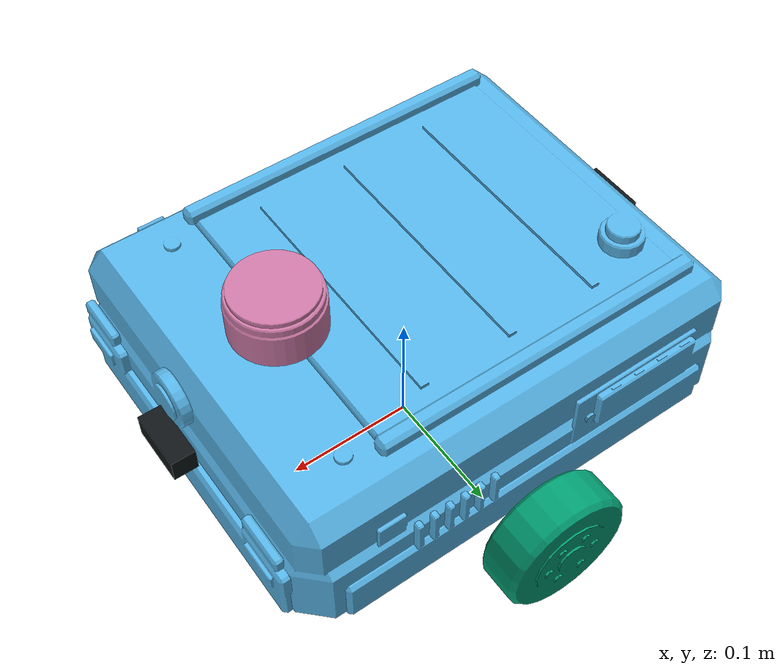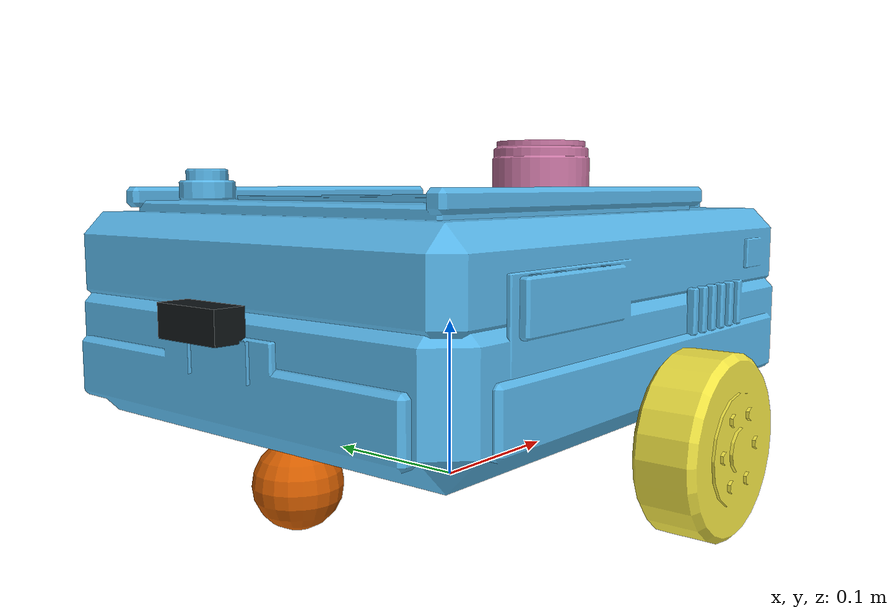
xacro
<?xml version="1.0"?>

<robot xmlns:xacro="http://www.ros.org/wiki/xacro" name="fleet_bot">

  <!-- ===== 1. Input and sizes ===== -->
  <xacro:arg name="ns" default="robot1"/>
  <xacro:property name="ns" value="$(arg ns)"/>

  <xacro:property name="wheel_radius"     value="0.050"/>
  <xacro:property name="wheel_separation" value="0.350"/>
  <xacro:property name="wheel_width"      value="0.035"/>
  <xacro:property name="base_length"      value="0.360"/>
  <xacro:property name="base_width"       value="0.300"/>
  <xacro:property name="base_height"      value="0.120"/>
  <xacro:property name="base_mass"        value="5.0"/>
  <xacro:property name="wheel_mass"       value="0.4"/>
  <xacro:property name="caster_radius"    value="0.025"/>
  <xacro:property name="body_rgba" value="${'0.20 0.47 0.96 1' if ns == 'robot1' else '0.94 0.55 0.16 1'}"/>

  <xacro:arg name="cameras" default="true"/>
  <xacro:arg name="camera_width" default="512"/>
  <xacro:arg name="camera_height" default="288"/>
  <xacro:arg name="camera_rate" default="8.0"/>
  <xacro:property name="robot_visual" value="${'blue' if ns == 'robot1' else 'amber'}"/>

  <!-- ===== 2. Mass helpers (physics needs inertia for every moving part) ===== -->
  <xacro:macro name="box_inertia" params="m x y z">
    <inertial>
      <mass value="${m}"/>
      <inertia ixx="${m*(y*y+z*z)/12}" iyy="${m*(x*x+z*z)/12}" izz="${m*(x*x+y*y)/12}"
               ixy="0" ixz="0" iyz="0"/>
    </inertial>
  </xacro:macro>
  <xacro:macro name="cylinder_inertia" params="m r h">
    <inertial>
      <mass value="${m}"/>
      <inertia ixx="${m*(3*r*r+h*h)/12}" iyy="${m*(3*r*r+h*h)/12}" izz="${m*r*r/2}"
               ixy="0" ixz="0" iyz="0"/>
    </inertial>
  </xacro:macro>

  <!-- ===== 3. Body ===== -->
  <link name="base_footprint"/>

  <link name="base_link">
    <visual>
      <geometry><mesh filename="package://factory_bot/models/robot_premium/meshes/body_${robot_visual}.obj"/></geometry>
    </visual>
    <collision>
      <geometry><box size="${base_length} ${base_width} ${base_height}"/></geometry>
    </collision>
    <xacro:box_inertia m="${base_mass}" x="${base_length}" y="${base_width}" z="${base_height}"/>
  </link>

  <joint name="base_footprint_joint" type="fixed">
    <parent link="base_footprint"/>
    <child link="base_link"/>
    <origin xyz="0 0 ${wheel_radius + base_height/2}"/>
  </joint>

  <!-- ===== 4. Wheels: one block used twice ===== -->
  <xacro:macro name="wheel" params="prefix reflect">
    <link name="${prefix}_wheel_link">
      <visual>
        <geometry><mesh filename="package://factory_bot/models/robot_premium/meshes/wheel.obj"/></geometry>
      </visual>
       <collision>
        <geometry><sphere radius="${wheel_radius}"/></geometry>
      </collision>
      <xacro:cylinder_inertia m="${wheel_mass}" r="${wheel_radius}" h="${wheel_width}"/>
    </link>
    <joint name="${prefix}_wheel_joint" type="continuous">
      <parent link="base_link"/>
      <child link="${prefix}_wheel_link"/>
      <origin xyz="0 ${reflect * wheel_separation/2} ${-base_height/2}"/>
      <axis xyz="0 1 0"/>
      <dynamics damping="0.02" friction="0.001"/>
    </joint>
  </xacro:macro>

  <xacro:wheel prefix="left"  reflect="1"/>
  <xacro:wheel prefix="right" reflect="-1"/>

  <!-- ===== 5. Front caster: a frictionless ball so the robot does not tip ===== -->
  <link name="caster_link">
    <visual><geometry><sphere radius="${caster_radius}"/></geometry></visual>
    <collision>
      <geometry><sphere radius="${caster_radius}"/></geometry>
      <surface><friction><ode><mu>0.0</mu><mu2>0.0</mu2></ode></friction></surface>
    </collision>
    <inertial>
      <mass value="0.1"/>
      <inertia ixx="1e-5" iyy="1e-5" izz="1e-5" ixy="0" ixz="0" iyz="0"/>
    </inertial>
  </link>
  <joint name="caster_joint" type="fixed">
    <parent link="base_link"/>
    <child link="caster_link"/>
    <origin xyz="${base_length/2 - 0.05} 0 ${-base_height/2 - wheel_radius + caster_radius}"/>
  </joint>

  <link name="rear_caster_link">
    <visual><geometry><sphere radius="${caster_radius}"/></geometry></visual>
    <collision><geometry><sphere radius="${caster_radius}"/></geometry></collision>
    <inertial>
      <mass value="0.1"/>
      <inertia ixx="1e-5" iyy="1e-5" izz="1e-5" ixy="0" ixz="0" iyz="0"/>
    </inertial>
  </link>
  <joint name="rear_caster_joint" type="fixed">
    <parent link="base_link"/>
    <child link="rear_caster_link"/>
    <origin xyz="${-(base_length/2 - 0.05)} 0 ${-base_height/2 - wheel_radius + caster_radius}"/>
  </joint>

  <!-- ===== 6. Sensor mounts (the sensors themselves are added in Step 6) ===== -->
  <link name="laser_link">
    <!-- Housing drawn BELOW the sensor point: the lidar must not see its own case. -->
    <visual>
      <geometry><mesh filename="package://factory_bot/models/robot_premium/meshes/lidar.obj"/></geometry>
    </visual>
    <inertial>
      <mass value="0.15"/>
      <inertia ixx="1e-4" iyy="1e-4" izz="1e-4" ixy="0" ixz="0" iyz="0"/>
    </inertial>
  </link>
  <joint name="laser_joint" type="fixed">
    <parent link="base_link"/>
    <child link="laser_link"/>
    <origin xyz="0.10 0 ${base_height/2 + 0.06}"/>
  </joint>

  <!-- Low front safety lidar: ahead of our own shell, at the other robot's body height.
       The original 360-degree SLAM lidar and its reference-map scan plane stay unchanged. -->
  <link name="obstacle_laser_link">
    <visual>
      <origin xyz="-0.015 0 0"/>
      <geometry><box size="0.018 0.045 0.018"/></geometry>
      <material name="safety_lidar_graphite"><color rgba="0.06 0.08 0.09 1"/></material>
    </visual>
  </link>
  <joint name="obstacle_laser_joint" type="fixed">
    <parent link="base_link"/><child link="obstacle_laser_link"/>
    <origin xyz="0.205 0 0.010"/>
  </joint>

  <!-- Low rear safety lidar, outside our shell. It is not an ICP/SLAM input. -->
  <link name="rear_obstacle_laser_link">
    <visual>
      <origin xyz="-0.015 0 0"/>
      <geometry><box size="0.018 0.045 0.018"/></geometry>
      <material name="safety_lidar_graphite"/>
    </visual>
  </link>
  <joint name="rear_obstacle_laser_joint" type="fixed">
    <parent link="base_link"/><child link="rear_obstacle_laser_link"/>
    <origin xyz="-0.205 0 0.010" rpy="0 0 3.141592653589793"/>
  </joint>

  <link name="imu_link">
    <inertial>
      <mass value="0.05"/>
      <inertia ixx="1e-6" iyy="1e-6" izz="1e-6" ixy="0" ixz="0" iyz="0"/>
    </inertial>
  </link>
  <joint name="imu_joint" type="fixed">
    <parent link="base_link"/>
    <child link="imu_link"/>
    <origin xyz="0 0 0.02"/>
  </joint>

  <!-- Visual camera lens is in the shell. Massless fixed sensor frames retain original dynamics. -->
  <link name="camera_link"/>
  <joint name="camera_joint" type="fixed">
    <parent link="base_link"/><child link="camera_link"/>
    <origin xyz="0.189 0 0.052"/>
  </joint>
  <link name="camera_optical_frame"/>
  <joint name="camera_optical_joint" type="fixed">
    <parent link="camera_link"/><child link="camera_optical_frame"/>
    <origin rpy="-1.57079632679 0 -1.57079632679"/>
  </joint>

  <xacro:include filename="$(find factory_bot)/urdf/fleet_bot.ros2_control.xacro"/>

  <xacro:include filename="$(find factory_bot)/urdf/fleet_bot.gazebo.xacro"/>

</robot>
